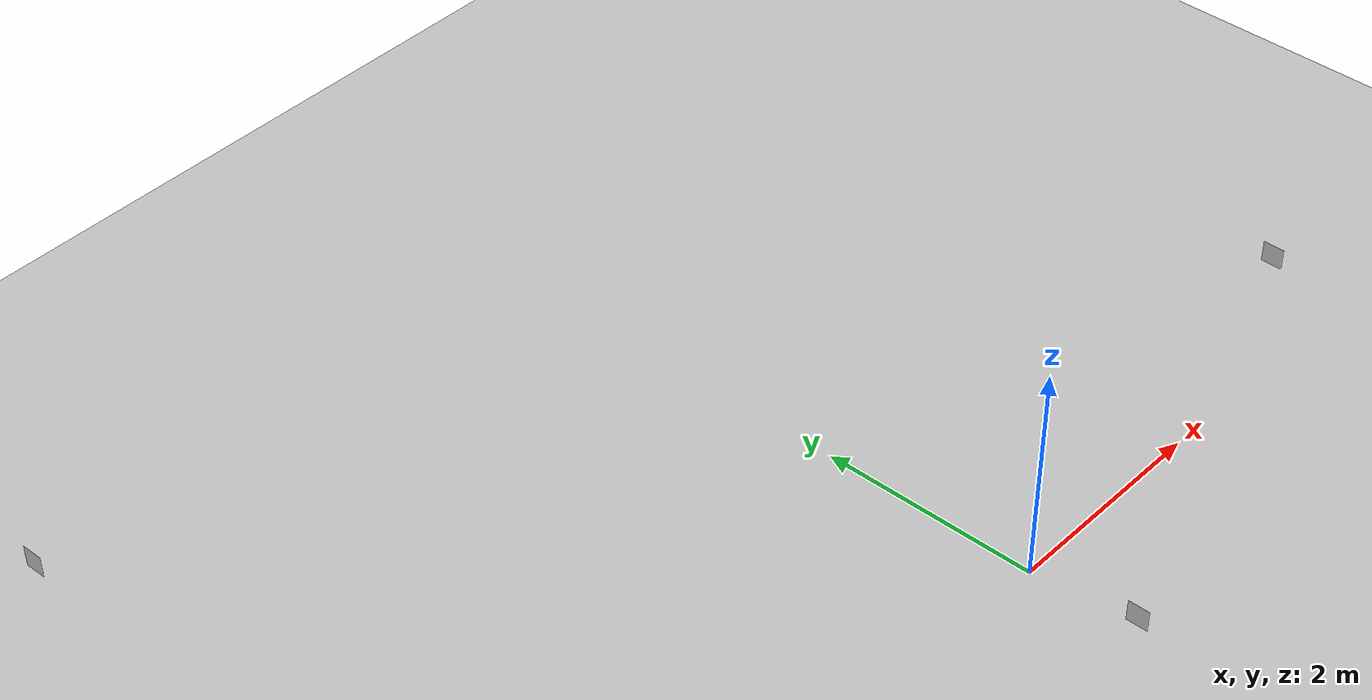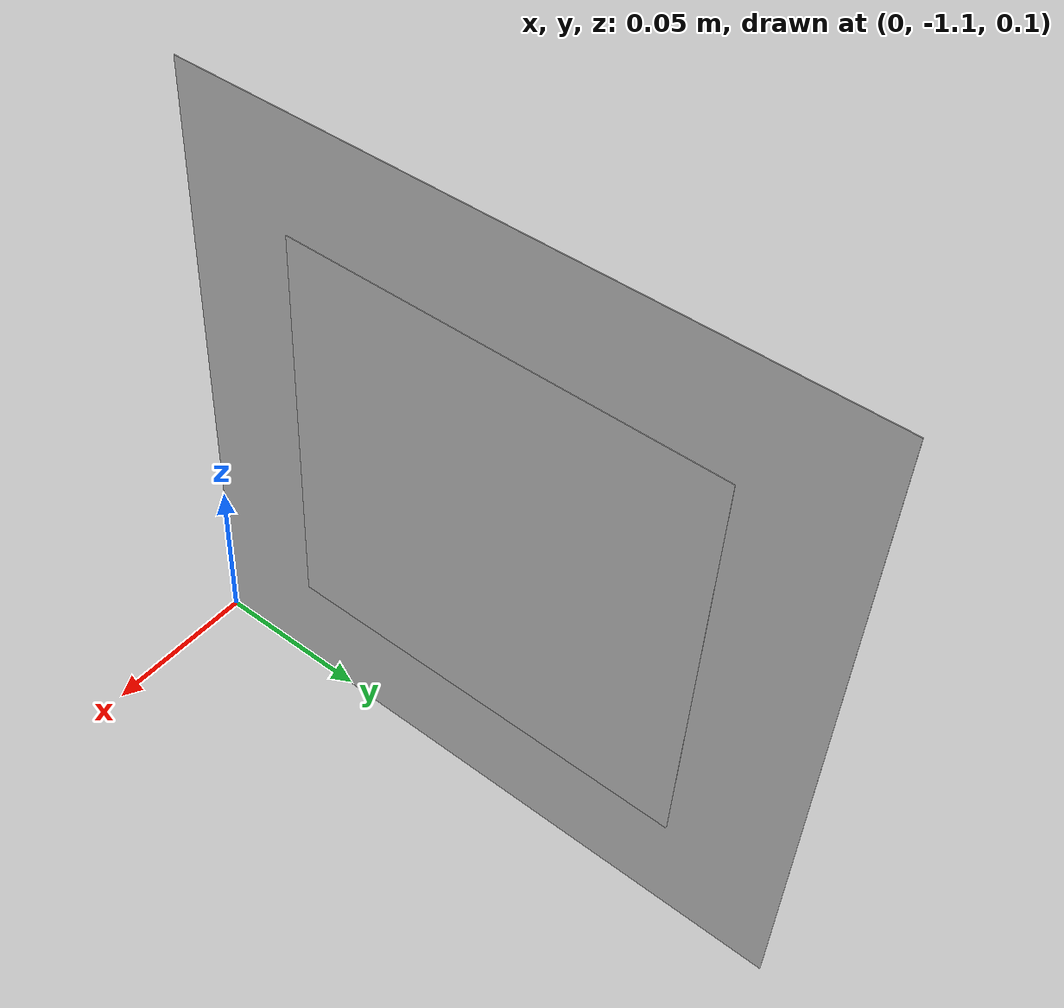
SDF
<sdf version="1.4">
 <world name="LLSF">
  <physics type="ode">
   <max_step_size>0.004</max_step_size>
   <real_time_factor>1</real_time_factor>
   <real_time_update_rate>300</real_time_update_rate>
  </physics>
  <scene><ambient>0.5 0.5 0.5 1.0</ambient><shadows>0</shadows></scene>
  <include><uri>model://ground_plane</uri></include>
  <include><uri>model://sun</uri></include>
  <light name="light" type="point">
   <cast_shadows>false</cast_shadows>
   <pose>-12 3 1 0 0 0</pose>
   <diffuse>127 127 127 255</diffuse>
   <specular>25 25 25 255</specular>
   <attenuation>
    <range>20.0</range>
    <linear>0.01</linear>
    <constant>0.7</constant>
    <quadratic>0.00</quadratic>
   </attenuation>
  </light>
  <include><name>tag_01</name><uri>model://tag</uri><pose>-5.33 5.4 0.483 0 0 0</pose></include>
  <include><name>tag_02</name><uri>model://tag</uri><pose>4.02 0.5 0.483 0 0 0</pose></include>
  <include><name>tag_17</name><uri>model://tag</uri><pose>0 -1 0.2 0 0 0</pose></include>
  <include><name>tag_18</name><uri>model://tag</uri><pose>0 -1 0.2 0 0 0</pose></include>
  <include><name>tag_33</name><uri>model://tag</uri><pose>0 -1 0.2 0 0 0</pose></include>
  <include><name>tag_34</name><uri>model://tag</uri><pose>0 -1 0.2 0 0 0</pose></include>
  <include><name>tag_177</name><uri>model://tag</uri><pose>0 -1 0.2 0 0 0</pose></include>
  <include><name>tag_178</name><uri>model://tag</uri><pose>0 -1 0.2 0 0 0</pose></include>
  <include><name>tag_65</name><uri>model://tag</uri><pose>0 -1 0.2 0 0 0</pose></include>
  <include><name>tag_66</name><uri>model://tag</uri><pose>0 -1 0.2 0 0 0</pose></include>
  <include><name>tag_81</name><uri>model://tag</uri><pose>0 -1 0.2 0 0 0</pose></include>
  <include><name>tag_82</name><uri>model://tag</uri><pose>0 -1 0.2 0 0 0</pose></include>
  <include><name>tag_97</name><uri>model://tag</uri><pose>0 -1 0.2 0 0 0</pose></include>
  <include><name>tag_98</name><uri>model://tag</uri><pose>0 -1 0.2 0 0 0</pose></include>
  <include><name>tag_113</name><uri>model://tag</uri><pose>0 -1 0.2 0 0 0</pose></include>
  <include><name>tag_114</name><uri>model://tag</uri><pose>0 -1 0.2 0 0 0</pose></include>
  <include><name>tag_129</name><uri>model://tag</uri><pose>0 -1 0.2 0 0 0</pose></include>
  <include><name>tag_130</name><uri>model://tag</uri><pose>0 -1 0.2 0 0 0</pose></include>
  <include><name>tag_145</name><uri>model://tag</uri><pose>0 -1 0.2 0 0 0</pose></include>
  <include><name>tag_146</name><uri>model://tag</uri><pose>0 -1 0.2 0 0 0</pose></include>
  <include><name>tag_161</name><uri>model://tag</uri><pose>0 -1 0.2 0 0 0</pose></include>
  <include><name>tag_162</name><uri>model://tag</uri><pose>0 -1 0.2 0 0 0</pose></include>
  <include><name>tag_49</name><uri>model://tag</uri><pose>0 -1 0.2 0 0 0</pose></include>
  <include><name>tag_50</name><uri>model://tag</uri><pose>0 -1 0.2 0 0 0</pose></include>
 </world>
</sdf>

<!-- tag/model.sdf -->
<sdf version="1.4">
  <model name="tag">
    <static>false</static>
    <link name="link">
      <pose>0 0 0 1.57 0 1.57</pose>
      <gravity>false</gravity>
      <!-- White background for tag -->

      <visual name="tag_background">
        <cast_shadows>false</cast_shadows>
        <pose>0 0 0 0 0 0</pose>
        <geometry>
          <plane>
            <normal>0 0 1</normal>
            <size>0.2 0.2</size>
          </plane>
        </geometry>
	<material>
          <script>
            <uri>model://tag/materials/scripts</uri>
            <uri>model://tag/materials/textures</uri>
            <name>tag/empty</name>
          </script>
	</material>
      </visual>
      <!-- The visual tag pattern is changed by the plugin depending on the name of this model. So spawn it with the name tag_01 to let it have the patter with id 01. -->
      <visual name="pattern">
        <cast_shadows>false</cast_shadows>
        <pose>0 0 0.001 0 0 0</pose>
        <geometry>
          <plane>
            <normal>0 0 1</normal>
            <size>0.130 0.130</size> <!-- Changed size from 0.135 0.135 to 0.13 0.13 -->
          </plane>
        </geometry>
	<material>
          <script>
            <uri>model://tag/materials/scripts</uri>
            <uri>model://tag/materials/textures</uri>
            <name>tag/tag_01</name>
          </script>
	</material>
      </visual>
    </link>

    <!-- Plugin to create the right pattern and publish the position -->
    <plugin name="Tag" filename="libtag.so"/>
    <plugin name="GPS" filename="libgps.so"/>
  </model>
</sdf>
